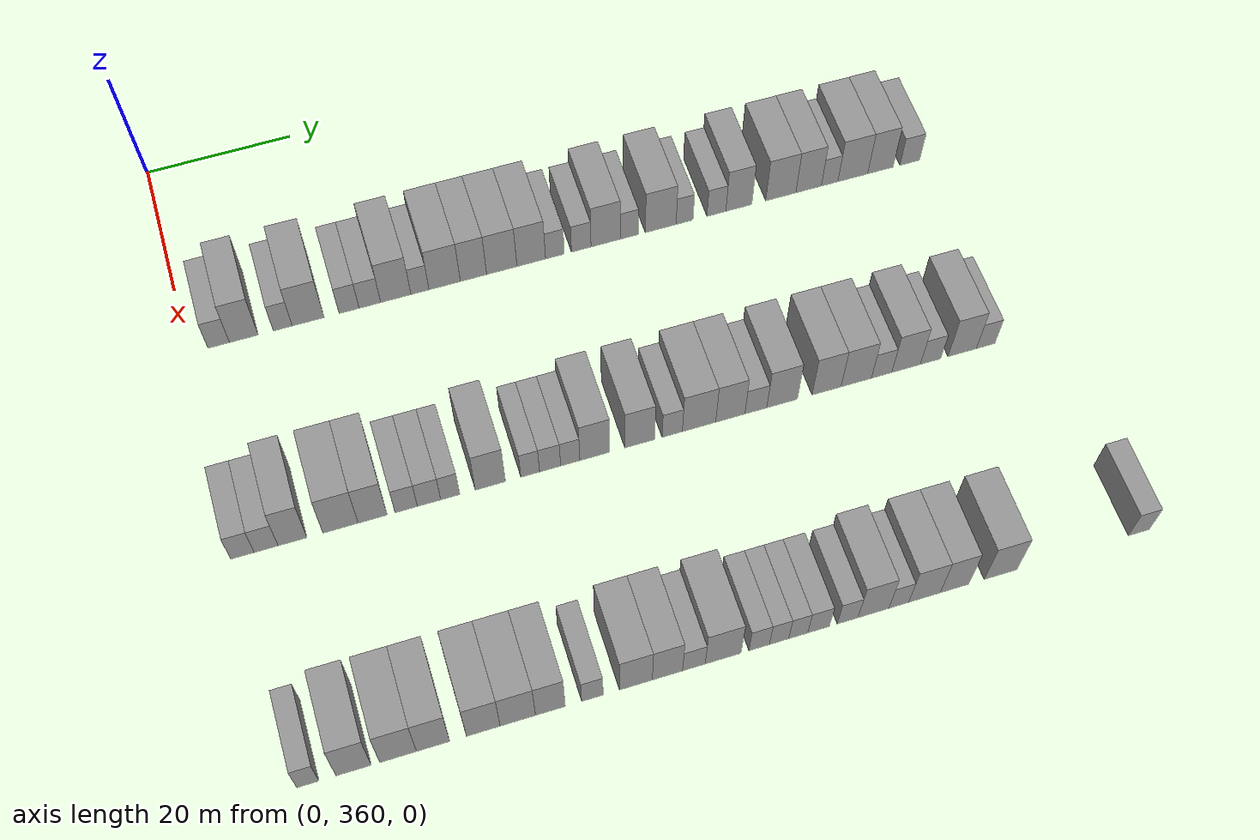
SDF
<sdf version="1.6">
 <world name="default">
  <model name="building_209">
   <static>1</static>
   <pose>25.0000 364.0483 0 0.000000 0.000000 0.000000</pose>
   <link name="link">
    <pose>0 0 3.00 0 0 0</pose>
    <collision name="collision"><geometry><box><size>10.0000 2.8384 6.0000</size></box></geometry></collision>
    <visual name="visual">
     <cast_shadows>0</cast_shadows>
     <geometry><box><size>10.0000 2.8384 6.0000</size></box></geometry>
     <material>
      <script>
       <uri>model://grey_wall/materials/scripts</uri>
       <uri>model://grey_wall/materials/textures</uri>
       <name>vrc/grey_wall</name>
      </script>
     </material>
    </visual>
   </link>
  </model>
  <model name="building_210">
   <static>1</static>
   <pose>25.0000 367.3713 0 0.000000 0.000000 0.000000</pose>
   <link name="link">
    <pose>0 0 4.50 0 0 0</pose>
    <collision name="collision"><geometry><box><size>10.0000 3.8077 9.0000</size></box></geometry></collision>
    <visual name="visual">
     <cast_shadows>0</cast_shadows>
     <geometry><box><size>10.0000 3.8077 9.0000</size></box></geometry>
     <material>
      <script>
       <uri>model://grey_wall/materials/scripts</uri>
       <uri>model://grey_wall/materials/textures</uri>
       <name>vrc/grey_wall</name>
      </script>
     </material>
    </visual>
   </link>
  </model>
  <model name="building_211">
   <static>1</static>
   <pose>25.0000 372.5318 0 0.000000 0.000000 0.000000</pose>
   <link name="link">
    <pose>0 0 3.00 0 0 0</pose>
    <collision name="collision"><geometry><box><size>10.0000 2.5133 6.0000</size></box></geometry></collision>
    <visual name="visual">
     <cast_shadows>0</cast_shadows>
     <geometry><box><size>10.0000 2.5133 6.0000</size></box></geometry>
     <material>
      <script>
       <uri>model://grey_wall/materials/scripts</uri>
       <uri>model://grey_wall/materials/textures</uri>
       <name>vrc/grey_wall</name>
      </script>
     </material>
    </visual>
   </link>
  </model>
  <model name="building_212">
   <static>1</static>
   <pose>25.0000 375.9277 0 0.000000 0.000000 0.000000</pose>
   <link name="link">
    <pose>0 0 4.50 0 0 0</pose>
    <collision name="collision"><geometry><box><size>10.0000 4.2786 9.0000</size></box></geometry></collision>
    <visual name="visual">
     <cast_shadows>0</cast_shadows>
     <geometry><box><size>10.0000 4.2786 9.0000</size></box></geometry>
     <material>
      <script>
       <uri>model://grey_wall/materials/scripts</uri>
       <uri>model://grey_wall/materials/textures</uri>
       <name>vrc/grey_wall</name>
      </script>
     </material>
    </visual>
   </link>
  </model>
  <model name="building_213">
   <static>1</static>
   <pose>25.0000 381.4130 0 0.000000 0.000000 0.000000</pose>
   <link name="link">
    <pose>0 0 3.00 0 0 0</pose>
    <collision name="collision"><geometry><box><size>10.0000 2.6919 6.0000</size></box></geometry></collision>
    <visual name="visual">
     <cast_shadows>0</cast_shadows>
     <geometry><box><size>10.0000 2.6919 6.0000</size></box></geometry>
     <material>
      <script>
       <uri>model://grey_wall/materials/scripts</uri>
       <uri>model://grey_wall/materials/textures</uri>
       <name>vrc/grey_wall</name>
      </script>
     </material>
    </visual>
   </link>
  </model>
  <model name="building_214">
   <static>1</static>
   <pose>25.0000 384.2141 0 0.000000 0.000000 0.000000</pose>
   <link name="link">
    <pose>0 0 3.00 0 0 0</pose>
    <collision name="collision"><geometry><box><size>10.0000 2.9104 6.0000</size></box></geometry></collision>
    <visual name="visual">
     <cast_shadows>0</cast_shadows>
     <geometry><box><size>10.0000 2.9104 6.0000</size></box></geometry>
     <material>
      <script>
       <uri>model://grey_wall/materials/scripts</uri>
       <uri>model://grey_wall/materials/textures</uri>
       <name>vrc/grey_wall</name>
      </script>
     </material>
    </visual>
   </link>
  </model>
  <model name="building_215">
   <static>1</static>
   <pose>25.0000 387.7266 0 0.000000 0.000000 0.000000</pose>
   <link name="link">
    <pose>0 0 4.50 0 0 0</pose>
    <collision name="collision"><geometry><box><size>10.0000 4.1146 9.0000</size></box></geometry></collision>
    <visual name="visual">
     <cast_shadows>0</cast_shadows>
     <geometry><box><size>10.0000 4.1146 9.0000</size></box></geometry>
     <material>
      <script>
       <uri>model://grey_wall/materials/scripts</uri>
       <uri>model://grey_wall/materials/textures</uri>
       <name>vrc/grey_wall</name>
      </script>
     </material>
    </visual>
   </link>
  </model>
  <model name="building_216">
   <static>1</static>
   <pose>25.0000 391.0160 0 0.000000 0.000000 0.000000</pose>
   <link name="link">
    <pose>0 0 3.00 0 0 0</pose>
    <collision name="collision"><geometry><box><size>10.0000 2.4641 6.0000</size></box></geometry></collision>
    <visual name="visual">
     <cast_shadows>0</cast_shadows>
     <geometry><box><size>10.0000 2.4641 6.0000</size></box></geometry>
     <material>
      <script>
       <uri>model://grey_wall/materials/scripts</uri>
       <uri>model://grey_wall/materials/textures</uri>
       <name>vrc/grey_wall</name>
      </script>
     </material>
    </visual>
   </link>
  </model>
  <model name="building_217">
   <static>1</static>
   <pose>25.0000 394.3928 0 0.000000 0.000000 0.000000</pose>
   <link name="link">
    <pose>0 0 4.50 0 0 0</pose>
    <collision name="collision"><geometry><box><size>10.0000 4.2895 9.0000</size></box></geometry></collision>
    <visual name="visual">
     <cast_shadows>0</cast_shadows>
     <geometry><box><size>10.0000 4.2895 9.0000</size></box></geometry>
     <material>
      <script>
       <uri>model://grey_wall/materials/scripts</uri>
       <uri>model://grey_wall/materials/textures</uri>
       <name>vrc/grey_wall</name>
      </script>
     </material>
    </visual>
   </link>
  </model>
  <model name="building_218">
   <static>1</static>
   <pose>25.0000 398.3449 0 0.000000 0.000000 0.000000</pose>
   <link name="link">
    <pose>0 0 4.50 0 0 0</pose>
    <collision name="collision"><geometry><box><size>10.0000 3.6149 9.0000</size></box></geometry></collision>
    <visual name="visual">
     <cast_shadows>0</cast_shadows>
     <geometry><box><size>10.0000 3.6149 9.0000</size></box></geometry>
     <material>
      <script>
       <uri>model://grey_wall/materials/scripts</uri>
       <uri>model://grey_wall/materials/textures</uri>
       <name>vrc/grey_wall</name>
      </script>
     </material>
    </visual>
   </link>
  </model>
  <model name="building_219">
   <static>1</static>
   <pose>25.0000 402.2416 0 0.000000 0.000000 0.000000</pose>
   <link name="link">
    <pose>0 0 4.50 0 0 0</pose>
    <collision name="collision"><geometry><box><size>10.0000 4.1786 9.0000</size></box></geometry></collision>
    <visual name="visual">
     <cast_shadows>0</cast_shadows>
     <geometry><box><size>10.0000 4.1786 9.0000</size></box></geometry>
     <material>
      <script>
       <uri>model://grey_wall/materials/scripts</uri>
       <uri>model://grey_wall/materials/textures</uri>
       <name>vrc/grey_wall</name>
      </script>
     </material>
    </visual>
   </link>
  </model>
  <model name="building_220">
   <static>1</static>
   <pose>25.0000 406.3183 0 0.000000 0.000000 0.000000</pose>
   <link name="link">
    <pose>0 0 4.50 0 0 0</pose>
    <collision name="collision"><geometry><box><size>10.0000 3.9747 9.0000</size></box></geometry></collision>
    <visual name="visual">
     <cast_shadows>0</cast_shadows>
     <geometry><box><size>10.0000 3.9747 9.0000</size></box></geometry>
     <material>
      <script>
       <uri>model://grey_wall/materials/scripts</uri>
       <uri>model://grey_wall/materials/textures</uri>
       <name>vrc/grey_wall</name>
      </script>
     </material>
    </visual>
   </link>
  </model>
  <model name="building_221">
   <static>1</static>
   <pose>25.0000 409.6116 0 0.000000 0.000000 0.000000</pose>
   <link name="link">
    <pose>0 0 3.00 0 0 0</pose>
    <collision name="collision"><geometry><box><size>10.0000 2.6121 6.0000</size></box></geometry></collision>
    <visual name="visual">
     <cast_shadows>0</cast_shadows>
     <geometry><box><size>10.0000 2.6121 6.0000</size></box></geometry>
     <material>
      <script>
       <uri>model://grey_wall/materials/scripts</uri>
       <uri>model://grey_wall/materials/textures</uri>
       <name>vrc/grey_wall</name>
      </script>
     </material>
    </visual>
   </link>
  </model>
  <model name="building_222">
   <static>1</static>
   <pose>25.0000 413.2878 0 0.000000 0.000000 0.000000</pose>
   <link name="link">
    <pose>0 0 3.00 0 0 0</pose>
    <collision name="collision"><geometry><box><size>10.0000 2.7403 6.0000</size></box></geometry></collision>
    <visual name="visual">
     <cast_shadows>0</cast_shadows>
     <geometry><box><size>10.0000 2.7403 6.0000</size></box></geometry>
     <material>
      <script>
       <uri>model://grey_wall/materials/scripts</uri>
       <uri>model://grey_wall/materials/textures</uri>
       <name>vrc/grey_wall</name>
      </script>
     </material>
    </visual>
   </link>
  </model>
  <model name="building_223">
   <static>1</static>
   <pose>25.0000 416.7062 0 0.000000 0.000000 0.000000</pose>
   <link name="link">
    <pose>0 0 4.50 0 0 0</pose>
    <collision name="collision"><geometry><box><size>10.0000 4.0963 9.0000</size></box></geometry></collision>
    <visual name="visual">
     <cast_shadows>0</cast_shadows>
     <geometry><box><size>10.0000 4.0963 9.0000</size></box></geometry>
     <material>
      <script>
       <uri>model://grey_wall/materials/scripts</uri>
       <uri>model://grey_wall/materials/textures</uri>
       <name>vrc/grey_wall</name>
      </script>
     </material>
    </visual>
   </link>
  </model>
  <model name="building_224">
   <static>1</static>
   <pose>25.0000 420.0218 0 0.000000 0.000000 0.000000</pose>
   <link name="link">
    <pose>0 0 3.00 0 0 0</pose>
    <collision name="collision"><geometry><box><size>10.0000 2.5350 6.0000</size></box></geometry></collision>
    <visual name="visual">
     <cast_shadows>0</cast_shadows>
     <geometry><box><size>10.0000 2.5350 6.0000</size></box></geometry>
     <material>
      <script>
       <uri>model://grey_wall/materials/scripts</uri>
       <uri>model://grey_wall/materials/textures</uri>
       <name>vrc/grey_wall</name>
      </script>
     </material>
    </visual>
   </link>
  </model>
  <model name="building_225">
   <static>1</static>
   <pose>25.0000 424.4759 0 0.000000 0.000000 0.000000</pose>
   <link name="link">
    <pose>0 0 4.50 0 0 0</pose>
    <collision name="collision"><geometry><box><size>10.0000 4.3731 9.0000</size></box></geometry></collision>
    <visual name="visual">
     <cast_shadows>0</cast_shadows>
     <geometry><box><size>10.0000 4.3731 9.0000</size></box></geometry>
     <material>
      <script>
       <uri>model://grey_wall/materials/scripts</uri>
       <uri>model://grey_wall/materials/textures</uri>
       <name>vrc/grey_wall</name>
      </script>
     </material>
    </visual>
   </link>
  </model>
  <model name="building_226">
   <static>1</static>
   <pose>25.0000 427.8697 0 0.000000 0.000000 0.000000</pose>
   <link name="link">
    <pose>0 0 3.00 0 0 0</pose>
    <collision name="collision"><geometry><box><size>10.0000 2.4147 6.0000</size></box></geometry></collision>
    <visual name="visual">
     <cast_shadows>0</cast_shadows>
     <geometry><box><size>10.0000 2.4147 6.0000</size></box></geometry>
     <material>
      <script>
       <uri>model://grey_wall/materials/scripts</uri>
       <uri>model://grey_wall/materials/textures</uri>
       <name>vrc/grey_wall</name>
      </script>
     </material>
    </visual>
   </link>
  </model>
  <model name="building_227">
   <static>1</static>
   <pose>25.0000 432.4259 0 0.000000 0.000000 0.000000</pose>
   <link name="link">
    <pose>0 0 3.00 0 0 0</pose>
    <collision name="collision"><geometry><box><size>10.0000 2.6976 6.0000</size></box></geometry></collision>
    <visual name="visual">
     <cast_shadows>0</cast_shadows>
     <geometry><box><size>10.0000 2.6976 6.0000</size></box></geometry>
     <material>
      <script>
       <uri>model://grey_wall/materials/scripts</uri>
       <uri>model://grey_wall/materials/textures</uri>
       <name>vrc/grey_wall</name>
      </script>
     </material>
    </visual>
   </link>
  </model>
  <model name="building_228">
   <static>1</static>
   <pose>25.0000 435.6476 0 0.000000 0.000000 0.000000</pose>
   <link name="link">
    <pose>0 0 4.50 0 0 0</pose>
    <collision name="collision"><geometry><box><size>10.0000 3.7458 9.0000</size></box></geometry></collision>
    <visual name="visual">
     <cast_shadows>0</cast_shadows>
     <geometry><box><size>10.0000 3.7458 9.0000</size></box></geometry>
     <material>
      <script>
       <uri>model://grey_wall/materials/scripts</uri>
       <uri>model://grey_wall/materials/textures</uri>
       <name>vrc/grey_wall</name>
      </script>
     </material>
    </visual>
   </link>
  </model>
  <model name="building_229">
   <static>1</static>
   <pose>25.0000 441.7066 0 0.000000 0.000000 0.000000</pose>
   <link name="link">
    <pose>0 0 4.50 0 0 0</pose>
    <collision name="collision"><geometry><box><size>10.0000 4.3723 9.0000</size></box></geometry></collision>
    <visual name="visual">
     <cast_shadows>0</cast_shadows>
     <geometry><box><size>10.0000 4.3723 9.0000</size></box></geometry>
     <material>
      <script>
       <uri>model://grey_wall/materials/scripts</uri>
       <uri>model://grey_wall/materials/textures</uri>
       <name>vrc/grey_wall</name>
      </script>
     </material>
    </visual>
   </link>
  </model>
  <model name="building_230">
   <static>1</static>
   <pose>25.0000 445.7479 0 0.000000 0.000000 0.000000</pose>
   <link name="link">
    <pose>0 0 4.50 0 0 0</pose>
    <collision name="collision"><geometry><box><size>10.0000 3.7103 9.0000</size></box></geometry></collision>
    <visual name="visual">
     <cast_shadows>0</cast_shadows>
     <geometry><box><size>10.0000 3.7103 9.0000</size></box></geometry>
     <material>
      <script>
       <uri>model://grey_wall/materials/scripts</uri>
       <uri>model://grey_wall/materials/textures</uri>
       <name>vrc/grey_wall</name>
      </script>
     </material>
    </visual>
   </link>
  </model>
  <model name="building_231">
   <static>1</static>
   <pose>25.0000 448.8090 0 0.000000 0.000000 0.000000</pose>
   <link name="link">
    <pose>0 0 3.00 0 0 0</pose>
    <collision name="collision"><geometry><box><size>10.0000 2.4120 6.0000</size></box></geometry></collision>
    <visual name="visual">
     <cast_shadows>0</cast_shadows>
     <geometry><box><size>10.0000 2.4120 6.0000</size></box></geometry>
     <material>
      <script>
       <uri>model://grey_wall/materials/scripts</uri>
       <uri>model://grey_wall/materials/textures</uri>
       <name>vrc/grey_wall</name>
      </script>
     </material>
    </visual>
   </link>
  </model>
  <model name="building_232">
   <static>1</static>
   <pose>25.0000 452.2034 0 0.000000 0.000000 0.000000</pose>
   <link name="link">
    <pose>0 0 4.50 0 0 0</pose>
    <collision name="collision"><geometry><box><size>10.0000 4.3769 9.0000</size></box></geometry></collision>
    <visual name="visual">
     <cast_shadows>0</cast_shadows>
     <geometry><box><size>10.0000 4.3769 9.0000</size></box></geometry>
     <material>
      <script>
       <uri>model://grey_wall/materials/scripts</uri>
       <uri>model://grey_wall/materials/textures</uri>
       <name>vrc/grey_wall</name>
      </script>
     </material>
    </visual>
   </link>
  </model>
  <model name="building_233">
   <static>1</static>
   <pose>25.0000 456.2679 0 0.000000 0.000000 0.000000</pose>
   <link name="link">
    <pose>0 0 4.50 0 0 0</pose>
    <collision name="collision"><geometry><box><size>10.0000 3.7521 9.0000</size></box></geometry></collision>
    <visual name="visual">
     <cast_shadows>0</cast_shadows>
     <geometry><box><size>10.0000 3.7521 9.0000</size></box></geometry>
     <material>
      <script>
       <uri>model://grey_wall/materials/scripts</uri>
       <uri>model://grey_wall/materials/textures</uri>
       <name>vrc/grey_wall</name>
      </script>
     </material>
    </visual>
   </link>
  </model>
  <model name="building_234">
   <static>1</static>
   <pose>25.0000 460.6029 0 0.000000 0.000000 0.000000</pose>
   <link name="link">
    <pose>0 0 3.00 0 0 0</pose>
    <collision name="collision"><geometry><box><size>10.0000 2.9178 6.0000</size></box></geometry></collision>
    <visual name="visual">
     <cast_shadows>0</cast_shadows>
     <geometry><box><size>10.0000 2.9178 6.0000</size></box></geometry>
     <material>
      <script>
       <uri>model://grey_wall/materials/scripts</uri>
       <uri>model://grey_wall/materials/textures</uri>
       <name>vrc/grey_wall</name>
      </script>
     </material>
    </visual>
   </link>
  </model>
  <model name="building_428">
   <static>1</static>
   <pose>55.0000 361.0301 0 0.000000 0.000000 0.000000</pose>
   <link name="link">
    <pose>0 0 3.00 0 0 0</pose>
    <collision name="collision"><geometry><box><size>10.0000 2.9078 6.0000</size></box></geometry></collision>
    <visual name="visual">
     <cast_shadows>0</cast_shadows>
     <geometry><box><size>10.0000 2.9078 6.0000</size></box></geometry>
     <material>
      <script>
       <uri>model://grey_wall/materials/scripts</uri>
       <uri>model://grey_wall/materials/textures</uri>
       <name>vrc/grey_wall</name>
      </script>
     </material>
    </visual>
   </link>
  </model>
  <model name="building_429">
   <static>1</static>
   <pose>55.0000 363.9739 0 0.000000 0.000000 0.000000</pose>
   <link name="link">
    <pose>0 0 3.00 0 0 0</pose>
    <collision name="collision"><geometry><box><size>10.0000 2.9797 6.0000</size></box></geometry></collision>
    <visual name="visual">
     <cast_shadows>0</cast_shadows>
     <geometry><box><size>10.0000 2.9797 6.0000</size></box></geometry>
     <material>
      <script>
       <uri>model://grey_wall/materials/scripts</uri>
       <uri>model://grey_wall/materials/textures</uri>
       <name>vrc/grey_wall</name>
      </script>
     </material>
    </visual>
   </link>
  </model>
  <model name="building_430">
   <static>1</static>
   <pose>55.0000 367.2652 0 0.000000 0.000000 0.000000</pose>
   <link name="link">
    <pose>0 0 4.50 0 0 0</pose>
    <collision name="collision"><geometry><box><size>10.0000 3.6028 9.0000</size></box></geometry></collision>
    <visual name="visual">
     <cast_shadows>0</cast_shadows>
     <geometry><box><size>10.0000 3.6028 9.0000</size></box></geometry>
     <material>
      <script>
       <uri>model://grey_wall/materials/scripts</uri>
       <uri>model://grey_wall/materials/textures</uri>
       <name>vrc/grey_wall</name>
      </script>
     </material>
    </visual>
   </link>
  </model>
  <model name="building_431">
   <static>1</static>
   <pose>55.0000 373.2834 0 0.000000 0.000000 0.000000</pose>
   <link name="link">
    <pose>0 0 4.50 0 0 0</pose>
    <collision name="collision"><geometry><box><size>10.0000 4.4337 9.0000</size></box></geometry></collision>
    <visual name="visual">
     <cast_shadows>0</cast_shadows>
     <geometry><box><size>10.0000 4.4337 9.0000</size></box></geometry>
     <material>
      <script>
       <uri>model://grey_wall/materials/scripts</uri>
       <uri>model://grey_wall/materials/textures</uri>
       <name>vrc/grey_wall</name>
      </script>
     </material>
    </visual>
   </link>
  </model>
  <model name="building_432">
   <static>1</static>
   <pose>55.0000 377.3380 0 0.000000 0.000000 0.000000</pose>
   <link name="link">
    <pose>0 0 4.50 0 0 0</pose>
    <collision name="collision"><geometry><box><size>10.0000 3.6753 9.0000</size></box></geometry></collision>
    <visual name="visual">
     <cast_shadows>0</cast_shadows>
     <geometry><box><size>10.0000 3.6753 9.0000</size></box></geometry>
     <material>
      <script>
       <uri>model://grey_wall/materials/scripts</uri>
       <uri>model://grey_wall/materials/textures</uri>
       <name>vrc/grey_wall</name>
      </script>
     </material>
    </visual>
   </link>
  </model>
  <model name="building_433">
   <static>1</static>
   <pose>55.0000 381.5956 0 0.000000 0.000000 0.000000</pose>
   <link name="link">
    <pose>0 0 3.00 0 0 0</pose>
    <collision name="collision"><geometry><box><size>10.0000 2.8399 6.0000</size></box></geometry></collision>
    <visual name="visual">
     <cast_shadows>0</cast_shadows>
     <geometry><box><size>10.0000 2.8399 6.0000</size></box></geometry>
     <material>
      <script>
       <uri>model://grey_wall/materials/scripts</uri>
       <uri>model://grey_wall/materials/textures</uri>
       <name>vrc/grey_wall</name>
      </script>
     </material>
    </visual>
   </link>
  </model>
  <model name="building_434">
   <static>1</static>
   <pose>55.0000 384.5088 0 0.000000 0.000000 0.000000</pose>
   <link name="link">
    <pose>0 0 3.00 0 0 0</pose>
    <collision name="collision"><geometry><box><size>10.0000 2.9866 6.0000</size></box></geometry></collision>
    <visual name="visual">
     <cast_shadows>0</cast_shadows>
     <geometry><box><size>10.0000 2.9866 6.0000</size></box></geometry>
     <material>
      <script>
       <uri>model://grey_wall/materials/scripts</uri>
       <uri>model://grey_wall/materials/textures</uri>
       <name>vrc/grey_wall</name>
      </script>
     </material>
    </visual>
   </link>
  </model>
  <model name="building_435">
   <static>1</static>
   <pose>55.0000 387.2165 0 0.000000 0.000000 0.000000</pose>
   <link name="link">
    <pose>0 0 3.00 0 0 0</pose>
    <collision name="collision"><geometry><box><size>10.0000 2.4286 6.0000</size></box></geometry></collision>
    <visual name="visual">
     <cast_shadows>0</cast_shadows>
     <geometry><box><size>10.0000 2.4286 6.0000</size></box></geometry>
     <material>
      <script>
       <uri>model://grey_wall/materials/scripts</uri>
       <uri>model://grey_wall/materials/textures</uri>
       <name>vrc/grey_wall</name>
      </script>
     </material>
    </visual>
   </link>
  </model>
  <model name="building_436">
   <static>1</static>
   <pose>55.0000 392.3767 0 0.000000 0.000000 0.000000</pose>
   <link name="link">
    <pose>0 0 4.50 0 0 0</pose>
    <collision name="collision"><geometry><box><size>10.0000 3.8918 9.0000</size></box></geometry></collision>
    <visual name="visual">
     <cast_shadows>0</cast_shadows>
     <geometry><box><size>10.0000 3.8918 9.0000</size></box></geometry>
     <material>
      <script>
       <uri>model://grey_wall/materials/scripts</uri>
       <uri>model://grey_wall/materials/textures</uri>
       <name>vrc/grey_wall</name>
      </script>
     </material>
    </visual>
   </link>
  </model>
  <model name="building_437">
   <static>1</static>
   <pose>55.0000 397.5362 0 0.000000 0.000000 0.000000</pose>
   <link name="link">
    <pose>0 0 3.00 0 0 0</pose>
    <collision name="collision"><geometry><box><size>10.0000 2.4274 6.0000</size></box></geometry></collision>
    <visual name="visual">
     <cast_shadows>0</cast_shadows>
     <geometry><box><size>10.0000 2.4274 6.0000</size></box></geometry>
     <material>
      <script>
       <uri>model://grey_wall/materials/scripts</uri>
       <uri>model://grey_wall/materials/textures</uri>
       <name>vrc/grey_wall</name>
      </script>
     </material>
    </visual>
   </link>
  </model>
  <model name="building_438">
   <static>1</static>
   <pose>55.0000 400.1274 0 0.000000 0.000000 0.000000</pose>
   <link name="link">
    <pose>0 0 3.00 0 0 0</pose>
    <collision name="collision"><geometry><box><size>10.0000 2.7550 6.0000</size></box></geometry></collision>
    <visual name="visual">
     <cast_shadows>0</cast_shadows>
     <geometry><box><size>10.0000 2.7550 6.0000</size></box></geometry>
     <material>
      <script>
       <uri>model://grey_wall/materials/scripts</uri>
       <uri>model://grey_wall/materials/textures</uri>
       <name>vrc/grey_wall</name>
      </script>
     </material>
    </visual>
   </link>
  </model>
  <model name="building_439">
   <static>1</static>
   <pose>55.0000 402.7601 0 0.000000 0.000000 0.000000</pose>
   <link name="link">
    <pose>0 0 3.00 0 0 0</pose>
    <collision name="collision"><geometry><box><size>10.0000 2.5104 6.0000</size></box></geometry></collision>
    <visual name="visual">
     <cast_shadows>0</cast_shadows>
     <geometry><box><size>10.0000 2.5104 6.0000</size></box></geometry>
     <material>
      <script>
       <uri>model://grey_wall/materials/scripts</uri>
       <uri>model://grey_wall/materials/textures</uri>
       <name>vrc/grey_wall</name>
      </script>
     </material>
    </visual>
   </link>
  </model>
  <model name="building_440">
   <static>1</static>
   <pose>55.0000 405.9724 0 0.000000 0.000000 0.000000</pose>
   <link name="link">
    <pose>0 0 4.50 0 0 0</pose>
    <collision name="collision"><geometry><box><size>10.0000 3.9143 9.0000</size></box></geometry></collision>
    <visual name="visual">
     <cast_shadows>0</cast_shadows>
     <geometry><box><size>10.0000 3.9143 9.0000</size></box></geometry>
     <material>
      <script>
       <uri>model://grey_wall/materials/scripts</uri>
       <uri>model://grey_wall/materials/textures</uri>
       <name>vrc/grey_wall</name>
      </script>
     </material>
    </visual>
   </link>
  </model>
  <model name="building_441">
   <static>1</static>
   <pose>55.0000 411.9003 0 0.000000 0.000000 0.000000</pose>
   <link name="link">
    <pose>0 0 4.50 0 0 0</pose>
    <collision name="collision"><geometry><box><size>10.0000 3.9416 9.0000</size></box></geometry></collision>
    <visual name="visual">
     <cast_shadows>0</cast_shadows>
     <geometry><box><size>10.0000 3.9416 9.0000</size></box></geometry>
     <material>
      <script>
       <uri>model://grey_wall/materials/scripts</uri>
       <uri>model://grey_wall/materials/textures</uri>
       <name>vrc/grey_wall</name>
      </script>
     </material>
    </visual>
   </link>
  </model>
  <model name="building_442">
   <static>1</static>
   <pose>55.0000 416.2173 0 0.000000 0.000000 0.000000</pose>
   <link name="link">
    <pose>0 0 3.00 0 0 0</pose>
    <collision name="collision"><geometry><box><size>10.0000 2.6924 6.0000</size></box></geometry></collision>
    <visual name="visual">
     <cast_shadows>0</cast_shadows>
     <geometry><box><size>10.0000 2.6924 6.0000</size></box></geometry>
     <material>
      <script>
       <uri>model://grey_wall/materials/scripts</uri>
       <uri>model://grey_wall/materials/textures</uri>
       <name>vrc/grey_wall</name>
      </script>
     </material>
    </visual>
   </link>
  </model>
  <model name="building_443">
   <static>1</static>
   <pose>55.0000 419.7948 0 0.000000 0.000000 0.000000</pose>
   <link name="link">
    <pose>0 0 4.50 0 0 0</pose>
    <collision name="collision"><geometry><box><size>10.0000 4.4627 9.0000</size></box></geometry></collision>
    <visual name="visual">
     <cast_shadows>0</cast_shadows>
     <geometry><box><size>10.0000 4.4627 9.0000</size></box></geometry>
     <material>
      <script>
       <uri>model://grey_wall/materials/scripts</uri>
       <uri>model://grey_wall/materials/textures</uri>
       <name>vrc/grey_wall</name>
      </script>
     </material>
    </visual>
   </link>
  </model>
  <model name="building_444">
   <static>1</static>
   <pose>55.0000 423.9864 0 0.000000 0.000000 0.000000</pose>
   <link name="link">
    <pose>0 0 4.50 0 0 0</pose>
    <collision name="collision"><geometry><box><size>10.0000 3.9204 9.0000</size></box></geometry></collision>
    <visual name="visual">
     <cast_shadows>0</cast_shadows>
     <geometry><box><size>10.0000 3.9204 9.0000</size></box></geometry>
     <material>
      <script>
       <uri>model://grey_wall/materials/scripts</uri>
       <uri>model://grey_wall/materials/textures</uri>
       <name>vrc/grey_wall</name>
      </script>
     </material>
    </visual>
   </link>
  </model>
  <model name="building_445">
   <static>1</static>
   <pose>55.0000 427.4232 0 0.000000 0.000000 0.000000</pose>
   <link name="link">
    <pose>0 0 3.00 0 0 0</pose>
    <collision name="collision"><geometry><box><size>10.0000 2.9534 6.0000</size></box></geometry></collision>
    <visual name="visual">
     <cast_shadows>0</cast_shadows>
     <geometry><box><size>10.0000 2.9534 6.0000</size></box></geometry>
     <material>
      <script>
       <uri>model://grey_wall/materials/scripts</uri>
       <uri>model://grey_wall/materials/textures</uri>
       <name>vrc/grey_wall</name>
      </script>
     </material>
    </visual>
   </link>
  </model>
  <model name="building_446">
   <static>1</static>
   <pose>55.0000 430.9792 0 0.000000 0.000000 0.000000</pose>
   <link name="link">
    <pose>0 0 4.50 0 0 0</pose>
    <collision name="collision"><geometry><box><size>10.0000 4.1584 9.0000</size></box></geometry></collision>
    <visual name="visual">
     <cast_shadows>0</cast_shadows>
     <geometry><box><size>10.0000 4.1584 9.0000</size></box></geometry>
     <material>
      <script>
       <uri>model://grey_wall/materials/scripts</uri>
       <uri>model://grey_wall/materials/textures</uri>
       <name>vrc/grey_wall</name>
      </script>
     </material>
    </visual>
   </link>
  </model>
  <model name="building_447">
   <static>1</static>
   <pose>55.0000 437.0414 0 0.000000 0.000000 0.000000</pose>
   <link name="link">
    <pose>0 0 4.50 0 0 0</pose>
    <collision name="collision"><geometry><box><size>10.0000 3.9660 9.0000</size></box></geometry></collision>
    <visual name="visual">
     <cast_shadows>0</cast_shadows>
     <geometry><box><size>10.0000 3.9660 9.0000</size></box></geometry>
     <material>
      <script>
       <uri>model://grey_wall/materials/scripts</uri>
       <uri>model://grey_wall/materials/textures</uri>
       <name>vrc/grey_wall</name>
      </script>
     </material>
    </visual>
   </link>
  </model>
  <model name="building_448">
   <static>1</static>
   <pose>55.0000 441.1165 0 0.000000 0.000000 0.000000</pose>
   <link name="link">
    <pose>0 0 4.50 0 0 0</pose>
    <collision name="collision"><geometry><box><size>10.0000 4.1844 9.0000</size></box></geometry></collision>
    <visual name="visual">
     <cast_shadows>0</cast_shadows>
     <geometry><box><size>10.0000 4.1844 9.0000</size></box></geometry>
     <material>
      <script>
       <uri>model://grey_wall/materials/scripts</uri>
       <uri>model://grey_wall/materials/textures</uri>
       <name>vrc/grey_wall</name>
      </script>
     </material>
    </visual>
   </link>
  </model>
  <model name="building_449">
   <static>1</static>
   <pose>55.0000 444.6138 0 0.000000 0.000000 0.000000</pose>
   <link name="link">
    <pose>0 0 3.00 0 0 0</pose>
    <collision name="collision"><geometry><box><size>10.0000 2.8102 6.0000</size></box></geometry></collision>
    <visual name="visual">
     <cast_shadows>0</cast_shadows>
     <geometry><box><size>10.0000 2.8102 6.0000</size></box></geometry>
     <material>
      <script>
       <uri>model://grey_wall/materials/scripts</uri>
       <uri>model://grey_wall/materials/textures</uri>
       <name>vrc/grey_wall</name>
      </script>
     </material>
    </visual>
   </link>
  </model>
  <model name="building_450">
   <static>1</static>
   <pose>55.0000 448.0032 0 0.000000 0.000000 0.000000</pose>
   <link name="link">
    <pose>0 0 4.50 0 0 0</pose>
    <collision name="collision"><geometry><box><size>10.0000 3.9685 9.0000</size></box></geometry></collision>
    <visual name="visual">
     <cast_shadows>0</cast_shadows>
     <geometry><box><size>10.0000 3.9685 9.0000</size></box></geometry>
     <material>
      <script>
       <uri>model://grey_wall/materials/scripts</uri>
       <uri>model://grey_wall/materials/textures</uri>
       <name>vrc/grey_wall</name>
      </script>
     </material>
    </visual>
   </link>
  </model>
  <model name="building_451">
   <static>1</static>
   <pose>55.0000 451.4099 0 0.000000 0.000000 0.000000</pose>
   <link name="link">
    <pose>0 0 3.00 0 0 0</pose>
    <collision name="collision"><geometry><box><size>10.0000 2.8450 6.0000</size></box></geometry></collision>
    <visual name="visual">
     <cast_shadows>0</cast_shadows>
     <geometry><box><size>10.0000 2.8450 6.0000</size></box></geometry>
     <material>
      <script>
       <uri>model://grey_wall/materials/scripts</uri>
       <uri>model://grey_wall/materials/textures</uri>
       <name>vrc/grey_wall</name>
      </script>
     </material>
    </visual>
   </link>
  </model>
  <model name="building_452">
   <static>1</static>
   <pose>55.0000 455.8184 0 0.000000 0.000000 0.000000</pose>
   <link name="link">
    <pose>0 0 4.50 0 0 0</pose>
    <collision name="collision"><geometry><box><size>10.0000 3.9719 9.0000</size></box></geometry></collision>
    <visual name="visual">
     <cast_shadows>0</cast_shadows>
     <geometry><box><size>10.0000 3.9719 9.0000</size></box></geometry>
     <material>
      <script>
       <uri>model://grey_wall/materials/scripts</uri>
       <uri>model://grey_wall/materials/textures</uri>
       <name>vrc/grey_wall</name>
      </script>
     </material>
    </visual>
   </link>
  </model>
  <model name="building_453">
   <static>1</static>
   <pose>55.0000 459.1087 0 0.000000 0.000000 0.000000</pose>
   <link name="link">
    <pose>0 0 3.00 0 0 0</pose>
    <collision name="collision"><geometry><box><size>10.0000 2.6087 6.0000</size></box></geometry></collision>
    <visual name="visual">
     <cast_shadows>0</cast_shadows>
     <geometry><box><size>10.0000 2.6087 6.0000</size></box></geometry>
     <material>
      <script>
       <uri>model://grey_wall/materials/scripts</uri>
       <uri>model://grey_wall/materials/textures</uri>
       <name>vrc/grey_wall</name>
      </script>
     </material>
    </visual>
   </link>
  </model>
  <model name="building_650">
   <static>1</static>
   <pose>85.0000 362.4748 0 0.000000 0.000000 0.000000</pose>
   <link name="link">
    <pose>0 0 3.00 0 0 0</pose>
    <collision name="collision"><geometry><box><size>10.0000 2.5804 6.0000</size></box></geometry></collision>
    <visual name="visual">
     <cast_shadows>0</cast_shadows>
     <geometry><box><size>10.0000 2.5804 6.0000</size></box></geometry>
     <material>
      <script>
       <uri>model://grey_wall/materials/scripts</uri>
       <uri>model://grey_wall/materials/textures</uri>
       <name>vrc/grey_wall</name>
      </script>
     </material>
    </visual>
   </link>
  </model>
  <model name="building_651">
   <static>1</static>
   <pose>85.0000 367.8353 0 0.000000 0.000000 0.000000</pose>
   <link name="link">
    <pose>0 0 4.50 0 0 0</pose>
    <collision name="collision"><geometry><box><size>10.0000 4.1405 9.0000</size></box></geometry></collision>
    <visual name="visual">
     <cast_shadows>0</cast_shadows>
     <geometry><box><size>10.0000 4.1405 9.0000</size></box></geometry>
     <material>
      <script>
       <uri>model://grey_wall/materials/scripts</uri>
       <uri>model://grey_wall/materials/textures</uri>
       <name>vrc/grey_wall</name>
      </script>
     </material>
    </visual>
   </link>
  </model>
  <model name="building_652">
   <static>1</static>
   <pose>85.0000 373.0830 0 0.000000 0.000000 0.000000</pose>
   <link name="link">
    <pose>0 0 4.50 0 0 0</pose>
    <collision name="collision"><geometry><box><size>10.0000 4.3550 9.0000</size></box></geometry></collision>
    <visual name="visual">
     <cast_shadows>0</cast_shadows>
     <geometry><box><size>10.0000 4.3550 9.0000</size></box></geometry>
     <material>
      <script>
       <uri>model://grey_wall/materials/scripts</uri>
       <uri>model://grey_wall/materials/textures</uri>
       <name>vrc/grey_wall</name>
      </script>
     </material>
    </visual>
   </link>
  </model>
  <model name="building_653">
   <static>1</static>
   <pose>85.0000 377.2454 0 0.000000 0.000000 0.000000</pose>
   <link name="link">
    <pose>0 0 4.50 0 0 0</pose>
    <collision name="collision"><geometry><box><size>10.0000 3.9697 9.0000</size></box></geometry></collision>
    <visual name="visual">
     <cast_shadows>0</cast_shadows>
     <geometry><box><size>10.0000 3.9697 9.0000</size></box></geometry>
     <material>
      <script>
       <uri>model://grey_wall/materials/scripts</uri>
       <uri>model://grey_wall/materials/textures</uri>
       <name>vrc/grey_wall</name>
      </script>
     </material>
    </visual>
   </link>
  </model>
  <model name="building_654">
   <static>1</static>
   <pose>85.0000 383.2524 0 0.000000 0.000000 0.000000</pose>
   <link name="link">
    <pose>0 0 4.50 0 0 0</pose>
    <collision name="collision"><geometry><box><size>10.0000 4.0443 9.0000</size></box></geometry></collision>
    <visual name="visual">
     <cast_shadows>0</cast_shadows>
     <geometry><box><size>10.0000 4.0443 9.0000</size></box></geometry>
     <material>
      <script>
       <uri>model://grey_wall/materials/scripts</uri>
       <uri>model://grey_wall/materials/textures</uri>
       <name>vrc/grey_wall</name>
      </script>
     </material>
    </visual>
   </link>
  </model>
  <model name="building_655">
   <static>1</static>
   <pose>85.0000 387.4145 0 0.000000 0.000000 0.000000</pose>
   <link name="link">
    <pose>0 0 4.50 0 0 0</pose>
    <collision name="collision"><geometry><box><size>10.0000 4.2799 9.0000</size></box></geometry></collision>
    <visual name="visual">
     <cast_shadows>0</cast_shadows>
     <geometry><box><size>10.0000 4.2799 9.0000</size></box></geometry>
     <material>
      <script>
       <uri>model://grey_wall/materials/scripts</uri>
       <uri>model://grey_wall/materials/textures</uri>
       <name>vrc/grey_wall</name>
      </script>
     </material>
    </visual>
   </link>
  </model>
  <model name="building_656">
   <static>1</static>
   <pose>85.0000 391.3574 0 0.000000 0.000000 0.000000</pose>
   <link name="link">
    <pose>0 0 4.50 0 0 0</pose>
    <collision name="collision"><geometry><box><size>10.0000 3.6059 9.0000</size></box></geometry></collision>
    <visual name="visual">
     <cast_shadows>0</cast_shadows>
     <geometry><box><size>10.0000 3.6059 9.0000</size></box></geometry>
     <material>
      <script>
       <uri>model://grey_wall/materials/scripts</uri>
       <uri>model://grey_wall/materials/textures</uri>
       <name>vrc/grey_wall</name>
      </script>
     </material>
    </visual>
   </link>
  </model>
  <model name="building_657">
   <static>1</static>
   <pose>85.0000 396.4736 0 0.000000 0.000000 0.000000</pose>
   <link name="link">
    <pose>0 0 3.00 0 0 0</pose>
    <collision name="collision"><geometry><box><size>10.0000 2.6267 6.0000</size></box></geometry></collision>
    <visual name="visual">
     <cast_shadows>0</cast_shadows>
     <geometry><box><size>10.0000 2.6267 6.0000</size></box></geometry>
     <material>
      <script>
       <uri>model://grey_wall/materials/scripts</uri>
       <uri>model://grey_wall/materials/textures</uri>
       <name>vrc/grey_wall</name>
      </script>
     </material>
    </visual>
   </link>
  </model>
  <model name="building_658">
   <static>1</static>
   <pose>85.0000 401.8154 0 0.000000 0.000000 0.000000</pose>
   <link name="link">
    <pose>0 0 4.50 0 0 0</pose>
    <collision name="collision"><geometry><box><size>10.0000 4.0569 9.0000</size></box></geometry></collision>
    <visual name="visual">
     <cast_shadows>0</cast_shadows>
     <geometry><box><size>10.0000 4.0569 9.0000</size></box></geometry>
     <material>
      <script>
       <uri>model://grey_wall/materials/scripts</uri>
       <uri>model://grey_wall/materials/textures</uri>
       <name>vrc/grey_wall</name>
      </script>
     </material>
    </visual>
   </link>
  </model>
  <model name="building_659">
   <static>1</static>
   <pose>85.0000 405.7153 0 0.000000 0.000000 0.000000</pose>
   <link name="link">
    <pose>0 0 4.50 0 0 0</pose>
    <collision name="collision"><geometry><box><size>10.0000 3.7428 9.0000</size></box></geometry></collision>
    <visual name="visual">
     <cast_shadows>0</cast_shadows>
     <geometry><box><size>10.0000 3.7428 9.0000</size></box></geometry>
     <material>
      <script>
       <uri>model://grey_wall/materials/scripts</uri>
       <uri>model://grey_wall/materials/textures</uri>
       <name>vrc/grey_wall</name>
      </script>
     </material>
    </visual>
   </link>
  </model>
  <model name="building_660">
   <static>1</static>
   <pose>85.0000 408.9980 0 0.000000 0.000000 0.000000</pose>
   <link name="link">
    <pose>0 0 3.00 0 0 0</pose>
    <collision name="collision"><geometry><box><size>10.0000 2.8225 6.0000</size></box></geometry></collision>
    <visual name="visual">
     <cast_shadows>0</cast_shadows>
     <geometry><box><size>10.0000 2.8225 6.0000</size></box></geometry>
     <material>
      <script>
       <uri>model://grey_wall/materials/scripts</uri>
       <uri>model://grey_wall/materials/textures</uri>
       <name>vrc/grey_wall</name>
      </script>
     </material>
    </visual>
   </link>
  </model>
  <model name="building_661">
   <static>1</static>
   <pose>85.0000 412.6482 0 0.000000 0.000000 0.000000</pose>
   <link name="link">
    <pose>0 0 4.50 0 0 0</pose>
    <collision name="collision"><geometry><box><size>10.0000 4.4779 9.0000</size></box></geometry></collision>
    <visual name="visual">
     <cast_shadows>0</cast_shadows>
     <geometry><box><size>10.0000 4.4779 9.0000</size></box></geometry>
     <material>
      <script>
       <uri>model://grey_wall/materials/scripts</uri>
       <uri>model://grey_wall/materials/textures</uri>
       <name>vrc/grey_wall</name>
      </script>
     </material>
    </visual>
   </link>
  </model>
  <model name="building_662">
   <static>1</static>
   <pose>85.0000 417.1730 0 0.000000 0.000000 0.000000</pose>
   <link name="link">
    <pose>0 0 3.00 0 0 0</pose>
    <collision name="collision"><geometry><box><size>10.0000 2.5716 6.0000</size></box></geometry></collision>
    <visual name="visual">
     <cast_shadows>0</cast_shadows>
     <geometry><box><size>10.0000 2.5716 6.0000</size></box></geometry>
     <material>
      <script>
       <uri>model://grey_wall/materials/scripts</uri>
       <uri>model://grey_wall/materials/textures</uri>
       <name>vrc/grey_wall</name>
      </script>
     </material>
    </visual>
   </link>
  </model>
  <model name="building_663">
   <static>1</static>
   <pose>85.0000 419.6757 0 0.000000 0.000000 0.000000</pose>
   <link name="link">
    <pose>0 0 3.00 0 0 0</pose>
    <collision name="collision"><geometry><box><size>10.0000 2.4337 6.0000</size></box></geometry></collision>
    <visual name="visual">
     <cast_shadows>0</cast_shadows>
     <geometry><box><size>10.0000 2.4337 6.0000</size></box></geometry>
     <material>
      <script>
       <uri>model://grey_wall/materials/scripts</uri>
       <uri>model://grey_wall/materials/textures</uri>
       <name>vrc/grey_wall</name>
      </script>
     </material>
    </visual>
   </link>
  </model>
  <model name="building_664">
   <static>1</static>
   <pose>85.0000 422.1059 0 0.000000 0.000000 0.000000</pose>
   <link name="link">
    <pose>0 0 3.00 0 0 0</pose>
    <collision name="collision"><geometry><box><size>10.0000 2.4269 6.0000</size></box></geometry></collision>
    <visual name="visual">
     <cast_shadows>0</cast_shadows>
     <geometry><box><size>10.0000 2.4269 6.0000</size></box></geometry>
     <material>
      <script>
       <uri>model://grey_wall/materials/scripts</uri>
       <uri>model://grey_wall/materials/textures</uri>
       <name>vrc/grey_wall</name>
      </script>
     </material>
    </visual>
   </link>
  </model>
  <model name="building_665">
   <static>1</static>
   <pose>85.0000 424.7002 0 0.000000 0.000000 0.000000</pose>
   <link name="link">
    <pose>0 0 3.00 0 0 0</pose>
    <collision name="collision"><geometry><box><size>10.0000 2.7617 6.0000</size></box></geometry></collision>
    <visual name="visual">
     <cast_shadows>0</cast_shadows>
     <geometry><box><size>10.0000 2.7617 6.0000</size></box></geometry>
     <material>
      <script>
       <uri>model://grey_wall/materials/scripts</uri>
       <uri>model://grey_wall/materials/textures</uri>
       <name>vrc/grey_wall</name>
      </script>
     </material>
    </visual>
   </link>
  </model>
  <model name="building_666">
   <static>1</static>
   <pose>85.0000 428.4017 0 0.000000 0.000000 0.000000</pose>
   <link name="link">
    <pose>0 0 3.00 0 0 0</pose>
    <collision name="collision"><geometry><box><size>10.0000 2.6412 6.0000</size></box></geometry></collision>
    <visual name="visual">
     <cast_shadows>0</cast_shadows>
     <geometry><box><size>10.0000 2.6412 6.0000</size></box></geometry>
     <material>
      <script>
       <uri>model://grey_wall/materials/scripts</uri>
       <uri>model://grey_wall/materials/textures</uri>
       <name>vrc/grey_wall</name>
      </script>
     </material>
    </visual>
   </link>
  </model>
  <model name="building_667">
   <static>1</static>
   <pose>85.0000 431.7182 0 0.000000 0.000000 0.000000</pose>
   <link name="link">
    <pose>0 0 4.50 0 0 0</pose>
    <collision name="collision"><geometry><box><size>10.0000 3.9918 9.0000</size></box></geometry></collision>
    <visual name="visual">
     <cast_shadows>0</cast_shadows>
     <geometry><box><size>10.0000 3.9918 9.0000</size></box></geometry>
     <material>
      <script>
       <uri>model://grey_wall/materials/scripts</uri>
       <uri>model://grey_wall/materials/textures</uri>
       <name>vrc/grey_wall</name>
      </script>
     </material>
    </visual>
   </link>
  </model>
  <model name="building_668">
   <static>1</static>
   <pose>85.0000 434.9879 0 0.000000 0.000000 0.000000</pose>
   <link name="link">
    <pose>0 0 3.00 0 0 0</pose>
    <collision name="collision"><geometry><box><size>10.0000 2.5478 6.0000</size></box></geometry></collision>
    <visual name="visual">
     <cast_shadows>0</cast_shadows>
     <geometry><box><size>10.0000 2.5478 6.0000</size></box></geometry>
     <material>
      <script>
       <uri>model://grey_wall/materials/scripts</uri>
       <uri>model://grey_wall/materials/textures</uri>
       <name>vrc/grey_wall</name>
      </script>
     </material>
    </visual>
   </link>
  </model>
  <model name="building_669">
   <static>1</static>
   <pose>85.0000 438.3055 0 0.000000 0.000000 0.000000</pose>
   <link name="link">
    <pose>0 0 4.50 0 0 0</pose>
    <collision name="collision"><geometry><box><size>10.0000 4.0872 9.0000</size></box></geometry></collision>
    <visual name="visual">
     <cast_shadows>0</cast_shadows>
     <geometry><box><size>10.0000 4.0872 9.0000</size></box></geometry>
     <material>
      <script>
       <uri>model://grey_wall/materials/scripts</uri>
       <uri>model://grey_wall/materials/textures</uri>
       <name>vrc/grey_wall</name>
      </script>
     </material>
    </visual>
   </link>
  </model>
  <model name="building_670">
   <static>1</static>
   <pose>85.0000 442.2173 0 0.000000 0.000000 0.000000</pose>
   <link name="link">
    <pose>0 0 4.50 0 0 0</pose>
    <collision name="collision"><geometry><box><size>10.0000 3.7364 9.0000</size></box></geometry></collision>
    <visual name="visual">
     <cast_shadows>0</cast_shadows>
     <geometry><box><size>10.0000 3.7364 9.0000</size></box></geometry>
     <material>
      <script>
       <uri>model://grey_wall/materials/scripts</uri>
       <uri>model://grey_wall/materials/textures</uri>
       <name>vrc/grey_wall</name>
      </script>
     </material>
    </visual>
   </link>
  </model>
  <model name="building_671">
   <static>1</static>
   <pose>85.0000 448.2421 0 0.000000 0.000000 0.000000</pose>
   <link name="link">
    <pose>0 0 4.50 0 0 0</pose>
    <collision name="collision"><geometry><box><size>10.0000 4.3132 9.0000</size></box></geometry></collision>
    <visual name="visual">
     <cast_shadows>0</cast_shadows>
     <geometry><box><size>10.0000 4.3132 9.0000</size></box></geometry>
     <material>
      <script>
       <uri>model://grey_wall/materials/scripts</uri>
       <uri>model://grey_wall/materials/textures</uri>
       <name>vrc/grey_wall</name>
      </script>
     </material>
    </visual>
   </link>
  </model>
  <model name="building_672">
   <static>1</static>
   <pose>85.0000 466.6599 0 0.000000 0.000000 0.000000</pose>
   <link name="link">
    <pose>0 0 3.00 0 0 0</pose>
    <collision name="collision"><geometry><box><size>10.0000 2.8408 6.0000</size></box></geometry></collision>
    <visual name="visual">
     <cast_shadows>0</cast_shadows>
     <geometry><box><size>10.0000 2.8408 6.0000</size></box></geometry>
     <material>
      <script>
       <uri>model://grey_wall/materials/scripts</uri>
       <uri>model://grey_wall/materials/textures</uri>
       <name>vrc/grey_wall</name>
      </script>
     </material>
    </visual>
   </link>
  </model>
 </world>
</sdf>
